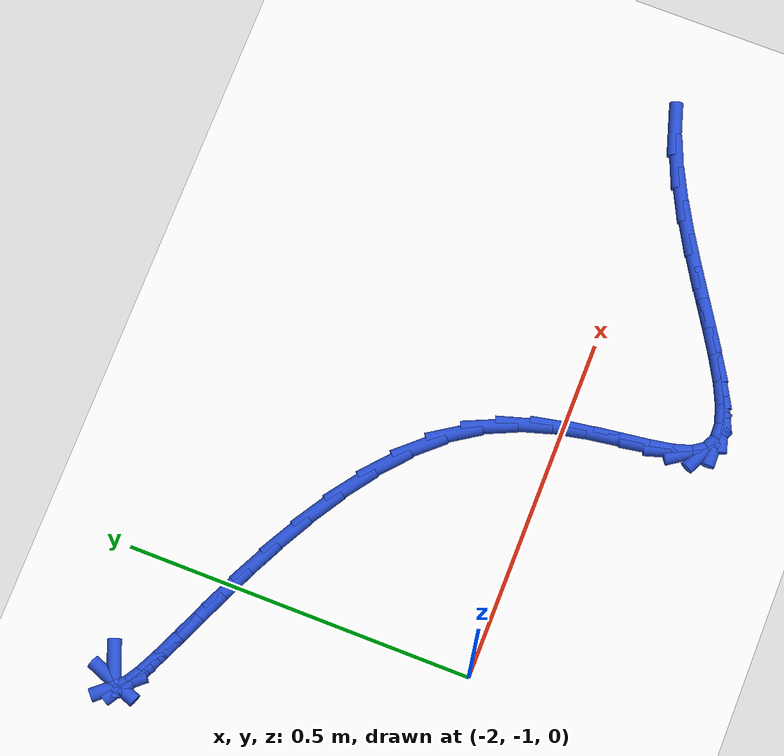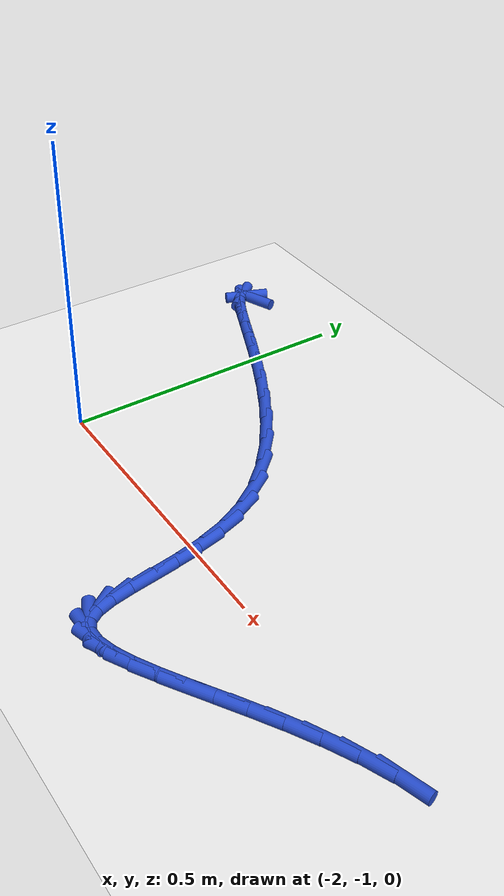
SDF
<sdf version="1.6">
 <world name="default">
  <model name="ground_plane">
   <static>1</static>
   <link name="link">
    <collision name="collision">
     <geometry><plane><normal>0 0 1</normal><size>100 100</size></plane></geometry>
     <surface><friction><ode><mu>100</mu><mu2>50</mu2></ode></friction></surface>
    </collision>
    <visual name="visual">
     <cast_shadows>0</cast_shadows>
     <geometry><plane><normal>0 0 1</normal><size>100 100</size></plane></geometry>
     <material>
      <script><uri>file://media/materials/scripts/gazebo.material</uri><name>Gazebo/WhiteGlow</name></script>
     </material>
    </visual>
   </link>
  </model>
  <model name="line">
   <link name="link_132">
    <pose>-2.1634134621999213 -0.5447384903108253 0.01 0 1.57 0.38050584407280125</pose>
    <collision name="collision">
     <geometry><cylinder><radius>0.01</radius><length>0.08</length></cylinder></geometry>
    </collision>
    <visual name="visual">
     <material>
      <script><name>Gazebo/Blue</name><uri>file://media/materials/scripts/gazebo.material</uri></script>
     </material>
     <geometry><cylinder><radius>0.01</radius><length>0.08</length></cylinder></geometry>
    </visual>
   </link>
   <link name="link_133">
    <pose>-2.1798199682319948 -0.5513010825790894 0.01 0 1.57 1.1964643574175775</pose>
    <collision name="collision">
     <geometry><cylinder><radius>0.01</radius><length>0.08</length></cylinder></geometry>
    </collision>
    <visual name="visual">
     <material>
      <script><name>Gazebo/Blue</name><uri>file://media/materials/scripts/gazebo.material</uri></script>
     </material>
     <geometry><cylinder><radius>0.01</radius><length>0.08</length></cylinder></geometry>
    </visual>
   </link>
   <link name="link_134">
    <pose>-2.1830306978159246 -0.5594738883352954 0.01 0 1.57 -0.8595833534273848</pose>
    <collision name="collision">
     <geometry><cylinder><radius>0.01</radius><length>0.08</length></cylinder></geometry>
    </collision>
    <visual name="visual">
     <material>
      <script><name>Gazebo/Blue</name><uri>file://media/materials/scripts/gazebo.material</uri></script>
     </material>
     <geometry><cylinder><radius>0.01</radius><length>0.08</length></cylinder></geometry>
    </visual>
   </link>
   <link name="link_135">
    <pose>-2.1745102973231454 -0.5693624737783749 0.01 0 1.57 -0.5574310650076343</pose>
    <collision name="collision">
     <geometry><cylinder><radius>0.01</radius><length>0.08</length></cylinder></geometry>
    </collision>
    <visual name="visual">
     <material>
      <script><name>Gazebo/Blue</name><uri>file://media/materials/scripts/gazebo.material</uri></script>
     </material>
     <geometry><cylinder><radius>0.01</radius><length>0.08</length></cylinder></geometry>
    </visual>
   </link>
   <link name="link_136">
    <pose>-2.155726566446126 -0.5810718118139238 0.01 0 1.57 -0.4591539863279753</pose>
    <collision name="collision">
     <geometry><cylinder><radius>0.01</radius><length>0.08</length></cylinder></geometry>
    </collision>
    <visual name="visual">
     <material>
      <script><name>Gazebo/Blue</name><uri>file://media/materials/scripts/gazebo.material</uri></script>
     </material>
     <geometry><cylinder><radius>0.01</radius><length>0.08</length></cylinder></geometry>
    </visual>
   </link>
   <link name="link_137">
    <pose>-2.128147304877335 -0.5947068753475384 0.01 0 1.57 -0.42184372228763406</pose>
    <collision name="collision">
     <geometry><cylinder><radius>0.01</radius><length>0.08</length></cylinder></geometry>
    </collision>
    <visual name="visual">
     <material>
      <script><name>Gazebo/Blue</name><uri>file://media/materials/scripts/gazebo.material</uri></script>
     </material>
     <geometry><cylinder><radius>0.01</radius><length>0.08</length></cylinder></geometry>
    </visual>
   </link>
   <link name="link_138">
    <pose>-2.093240312309241 -0.6103726372848155 0.01 0 1.57 -0.41170822952067776</pose>
    <collision name="collision">
     <geometry><cylinder><radius>0.01</radius><length>0.08</length></cylinder></geometry>
    </collision>
    <visual name="visual">
     <material>
      <script><name>Gazebo/Blue</name><uri>file://media/materials/scripts/gazebo.material</uri></script>
     </material>
     <geometry><cylinder><radius>0.01</radius><length>0.08</length></cylinder></geometry>
    </visual>
   </link>
   <link name="link_139">
    <pose>-2.0524733884343114 -0.6281740705313514 0.01 0 1.57 -0.41769509636596763</pose>
    <collision name="collision">
     <geometry><cylinder><radius>0.01</radius><length>0.08</length></cylinder></geometry>
    </collision>
    <visual name="visual">
     <material>
      <script><name>Gazebo/Blue</name><uri>file://media/materials/scripts/gazebo.material</uri></script>
     </material>
     <geometry><cylinder><radius>0.01</radius><length>0.08</length></cylinder></geometry>
    </visual>
   </link>
   <link name="link_140">
    <pose>-2.007314332945016 -0.6482161479927422 0.01 0 1.57 -0.43575207568086965</pose>
    <collision name="collision">
     <geometry><cylinder><radius>0.01</radius><length>0.08</length></cylinder></geometry>
    </collision>
    <visual name="visual">
     <material>
      <script><name>Gazebo/Blue</name><uri>file://media/materials/scripts/gazebo.material</uri></script>
     </material>
     <geometry><cylinder><radius>0.01</radius><length>0.08</length></cylinder></geometry>
    </visual>
   </link>
   <link name="link_141">
    <pose>-1.959230945533824 -0.6706038425745844 0.01 0 1.57 -0.4647503493867922</pose>
    <collision name="collision">
     <geometry><cylinder><radius>0.01</radius><length>0.08</length></cylinder></geometry>
    </collision>
    <visual name="visual">
     <material>
      <script><name>Gazebo/Blue</name><uri>file://media/materials/scripts/gazebo.material</uri></script>
     </material>
     <geometry><cylinder><radius>0.01</radius><length>0.08</length></cylinder></geometry>
    </visual>
   </link>
   <link name="link_142">
    <pose>-1.909691025893203 -0.6954421271824741 0.01 0 1.57 -0.5052131763946126</pose>
    <collision name="collision">
     <geometry><cylinder><radius>0.01</radius><length>0.08</length></cylinder></geometry>
    </collision>
    <visual name="visual">
     <material>
      <script><name>Gazebo/Blue</name><uri>file://media/materials/scripts/gazebo.material</uri></script>
     </material>
     <geometry><cylinder><radius>0.01</radius><length>0.08</length></cylinder></geometry>
    </visual>
   </link>
   <link name="link_143">
    <pose>-1.86016237371562 -0.7228359747220089 0.01 0 1.57 -0.5589493300951623</pose>
    <collision name="collision">
     <geometry><cylinder><radius>0.01</radius><length>0.08</length></cylinder></geometry>
    </collision>
    <visual name="visual">
     <material>
      <script><name>Gazebo/Blue</name><uri>file://media/materials/scripts/gazebo.material</uri></script>
     </material>
     <geometry><cylinder><radius>0.01</radius><length>0.08</length></cylinder></geometry>
    </visual>
   </link>
   <link name="link_144">
    <pose>-1.812112788693547 -0.7528903580987834 0.01 0 1.57 -0.6290560343608278</pose>
    <collision name="collision">
     <geometry><cylinder><radius>0.01</radius><length>0.08</length></cylinder></geometry>
    </collision>
    <visual name="visual">
     <material>
      <script><name>Gazebo/Blue</name><uri>file://media/materials/scripts/gazebo.material</uri></script>
     </material>
     <geometry><cylinder><radius>0.01</radius><length>0.08</length></cylinder></geometry>
    </visual>
   </link>
   <link name="link_145">
    <pose>-1.7670100705194505 -0.7857102502183948 0.01 0 1.57 -0.7200581986029679</pose>
    <collision name="collision">
     <geometry><cylinder><radius>0.01</radius><length>0.08</length></cylinder></geometry>
    </collision>
    <visual name="visual">
     <material>
      <script><name>Gazebo/Blue</name><uri>file://media/materials/scripts/gazebo.material</uri></script>
     </material>
     <geometry><cylinder><radius>0.01</radius><length>0.08</length></cylinder></geometry>
    </visual>
   </link>
   <link name="link_146">
    <pose>-1.7263220188858 -0.8214006239864395 0.01 0 1.57 -0.8378906430196946</pose>
    <collision name="collision">
     <geometry><cylinder><radius>0.01</radius><length>0.08</length></cylinder></geometry>
    </collision>
    <visual name="visual">
     <material>
      <script><name>Gazebo/Blue</name><uri>file://media/materials/scripts/gazebo.material</uri></script>
     </material>
     <geometry><cylinder><radius>0.01</radius><length>0.08</length></cylinder></geometry>
    </visual>
   </link>
   <link name="link_147">
    <pose>-1.691516433485063 -0.8600664523085136 0.01 0 1.57 -0.9887262036252049</pose>
    <collision name="collision">
     <geometry><cylinder><radius>0.01</radius><length>0.08</length></cylinder></geometry>
    </collision>
    <visual name="visual">
     <material>
      <script><name>Gazebo/Blue</name><uri>file://media/materials/scripts/gazebo.material</uri></script>
     </material>
     <geometry><cylinder><radius>0.01</radius><length>0.08</length></cylinder></geometry>
    </visual>
   </link>
   <link name="link_148">
    <pose>-1.664046994582187 -0.9018049984986757 0.01 0 1.57 -1.1509734642535074</pose>
    <collision name="collision">
     <geometry><cylinder><radius>0.01</radius><length>0.08</length></cylinder></geometry>
    </collision>
    <visual name="visual">
     <material>
      <script><name>Gazebo/Blue</name><uri>file://media/materials/scripts/gazebo.material</uri></script>
     </material>
     <geometry><cylinder><radius>0.01</radius><length>0.08</length></cylinder></geometry>
    </visual>
   </link>
   <link name="link_149">
    <pose>-1.644269259562504 -0.9461139209047309 0.01 0 1.57 -1.2795933883850157</pose>
    <collision name="collision">
     <geometry><cylinder><radius>0.01</radius><length>0.08</length></cylinder></geometry>
    </collision>
    <visual name="visual">
     <material>
      <script><name>Gazebo/Blue</name><uri>file://media/materials/scripts/gazebo.material</uri></script>
     </material>
     <geometry><cylinder><radius>0.01</radius><length>0.08</length></cylinder></geometry>
    </visual>
   </link>
   <link name="link_150">
    <pose>-1.6306741628950008 -0.9914727430358728 0.01 0 1.57 -1.3702969989653635</pose>
    <collision name="collision">
     <geometry><cylinder><radius>0.01</radius><length>0.08</length></cylinder></geometry>
    </collision>
    <visual name="visual">
     <material>
      <script><name>Gazebo/Blue</name><uri>file://media/materials/scripts/gazebo.material</uri></script>
     </material>
     <geometry><cylinder><radius>0.01</radius><length>0.08</length></cylinder></geometry>
    </visual>
   </link>
   <link name="link_151">
    <pose>-1.6215716157380773 -1.0362621447490479 0.01 0 1.57 -1.4239734629653895</pose>
    <collision name="collision">
     <geometry><cylinder><radius>0.01</radius><length>0.08</length></cylinder></geometry>
    </collision>
    <visual name="visual">
     <material>
      <script><name>Gazebo/Blue</name><uri>file://media/materials/scripts/gazebo.material</uri></script>
     </material>
     <geometry><cylinder><radius>0.01</radius><length>0.08</length></cylinder></geometry>
    </visual>
   </link>
   <link name="link_152">
    <pose>-1.6152715292501305 -1.0788628059012024 0.01 0 1.57 -1.4378555781503788</pose>
    <collision name="collision">
     <geometry><cylinder><radius>0.01</radius><length>0.08</length></cylinder></geometry>
    </collision>
    <visual name="visual">
     <material>
      <script><name>Gazebo/Blue</name><uri>file://media/materials/scripts/gazebo.material</uri></script>
     </material>
     <geometry><cylinder><radius>0.01</radius><length>0.08</length></cylinder></geometry>
    </visual>
   </link>
   <link name="link_153">
    <pose>-1.6100838145895604 -1.117655406349281 0.01 0 1.57 -1.3996883597584224</pose>
    <collision name="collision">
     <geometry><cylinder><radius>0.01</radius><length>0.08</length></cylinder></geometry>
    </collision>
    <visual name="visual">
     <material>
      <script><name>Gazebo/Blue</name><uri>file://media/materials/scripts/gazebo.material</uri></script>
     </material>
     <geometry><cylinder><radius>0.01</radius><length>0.08</length></cylinder></geometry>
    </visual>
   </link>
   <link name="link_154">
    <pose>-1.6043183829147643 -1.1510206259502302 0.01 0 1.57 -1.2745470460455386</pose>
    <collision name="collision">
     <geometry><cylinder><radius>0.01</radius><length>0.08</length></cylinder></geometry>
    </collision>
    <visual name="visual">
     <material>
      <script><name>Gazebo/Blue</name><uri>file://media/materials/scripts/gazebo.material</uri></script>
     </material>
     <geometry><cylinder><radius>0.01</radius><length>0.08</length></cylinder></geometry>
    </visual>
   </link>
   <link name="link_155">
    <pose>-1.596285145384141 -1.1773391445609962 0.01 0 1.57 -0.9742039762456328</pose>
    <collision name="collision">
     <geometry><cylinder><radius>0.01</radius><length>0.08</length></cylinder></geometry>
    </collision>
    <visual name="visual">
     <material>
      <script><name>Gazebo/Blue</name><uri>file://media/materials/scripts/gazebo.material</uri></script>
     </material>
     <geometry><cylinder><radius>0.01</radius><length>0.08</length></cylinder></geometry>
    </visual>
   </link>
   <link name="link_156">
    <pose>-1.584295335625267 -1.1949933933433514 0.01 0 1.57 -0.442539231124182</pose>
    <collision name="collision">
     <geometry><cylinder><radius>0.01</radius><length>0.08</length></cylinder></geometry>
    </collision>
    <visual name="visual">
     <material>
      <script><name>Gazebo/Blue</name><uri>file://media/materials/scripts/gazebo.material</uri></script>
     </material>
     <geometry><cylinder><radius>0.01</radius><length>0.08</length></cylinder></geometry>
    </visual>
   </link>
   <link name="link_157">
    <pose>-1.5672077731311218 -1.203090954399848 0.01 0 1.57 0.023271894321225756</pose>
    <collision name="collision">
     <geometry><cylinder><radius>0.01</radius><length>0.08</length></cylinder></geometry>
    </collision>
    <visual name="visual">
     <material>
      <script><name>Gazebo/Blue</name><uri>file://media/materials/scripts/gazebo.material</uri></script>
     </material>
     <geometry><cylinder><radius>0.01</radius><length>0.08</length></cylinder></geometry>
    </visual>
   </link>
   <link name="link_158">
    <pose>-1.5452714424857776 -1.2025803622522662 0.01 0 1.57 0.29099606359521296</pose>
    <collision name="collision">
     <geometry><cylinder><radius>0.01</radius><length>0.08</length></cylinder></geometry>
    </collision>
    <visual name="visual">
     <material>
      <script><name>Gazebo/Blue</name><uri>file://media/materials/scripts/gazebo.material</uri></script>
     </material>
     <geometry><cylinder><radius>0.01</radius><length>0.08</length></cylinder></geometry>
    </visual>
   </link>
   <link name="link_159">
    <pose>-1.5189526461558363 -1.194697938739265 0.01 0 1.57 0.4341333347877674</pose>
    <collision name="collision">
     <geometry><cylinder><radius>0.01</radius><length>0.08</length></cylinder></geometry>
    </collision>
    <visual name="visual">
     <material>
      <script><name>Gazebo/Blue</name><uri>file://media/materials/scripts/gazebo.material</uri></script>
     </material>
     <geometry><cylinder><radius>0.01</radius><length>0.08</length></cylinder></geometry>
    </visual>
   </link>
   <link name="link_160">
    <pose>-1.4887176866078984 -1.1806800056995024 0.01 0 1.57 0.511699326028286</pose>
    <collision name="collision">
     <geometry><cylinder><radius>0.01</radius><length>0.08</length></cylinder></geometry>
    </collision>
    <visual name="visual">
     <material>
      <script><name>Gazebo/Blue</name><uri>file://media/materials/scripts/gazebo.material</uri></script>
     </material>
     <geometry><cylinder><radius>0.01</radius><length>0.08</length></cylinder></geometry>
    </visual>
   </link>
   <link name="link_161">
    <pose>-1.4550328663085674 -1.1617628849716382 0.01 0 1.57 0.5519482860051629</pose>
    <collision name="collision">
     <geometry><cylinder><radius>0.01</radius><length>0.08</length></cylinder></geometry>
    </collision>
    <visual name="visual">
     <material>
      <script><name>Gazebo/Blue</name><uri>file://media/materials/scripts/gazebo.material</uri></script>
     </material>
     <geometry><cylinder><radius>0.01</radius><length>0.08</length></cylinder></geometry>
    </visual>
   </link>
   <link name="link_162">
    <pose>-1.4183644877244448 -1.1391828983943306 0.01 0 1.57 0.5680036127045718</pose>
    <collision name="collision">
     <geometry><cylinder><radius>0.01</radius><length>0.08</length></cylinder></geometry>
    </collision>
    <visual name="visual">
     <material>
      <script><name>Gazebo/Blue</name><uri>file://media/materials/scripts/gazebo.material</uri></script>
     </material>
     <geometry><cylinder><radius>0.01</radius><length>0.08</length></cylinder></geometry>
    </visual>
   </link>
   <link name="link_163">
    <pose>-1.3791788533221325 -1.1141763678062389 0.01 0 1.57 0.5659570833558966</pose>
    <collision name="collision">
     <geometry><cylinder><radius>0.01</radius><length>0.08</length></cylinder></geometry>
    </collision>
    <visual name="visual">
     <material>
      <script><name>Gazebo/Blue</name><uri>file://media/materials/scripts/gazebo.material</uri></script>
     </material>
     <geometry><cylinder><radius>0.01</radius><length>0.08</length></cylinder></geometry>
    </visual>
   </link>
   <link name="link_164">
    <pose>-1.3379422655682323 -1.0879796150460217 0.01 0 1.57 0.5482453044480116</pose>
    <collision name="collision">
     <geometry><cylinder><radius>0.01</radius><length>0.08</length></cylinder></geometry>
    </collision>
    <visual name="visual">
     <material>
      <script><name>Gazebo/Blue</name><uri>file://media/materials/scripts/gazebo.material</uri></script>
     </material>
     <geometry><cylinder><radius>0.01</radius><length>0.08</length></cylinder></geometry>
    </visual>
   </link>
   <link name="link_165">
    <pose>-1.2951210269293452 -1.061828961952337 0.01 0 1.57 0.5150170946898767</pose>
    <collision name="collision">
     <geometry><cylinder><radius>0.01</radius><length>0.08</length></cylinder></geometry>
    </collision>
    <visual name="visual">
     <material>
      <script><name>Gazebo/Blue</name><uri>file://media/materials/scripts/gazebo.material</uri></script>
     </material>
     <geometry><cylinder><radius>0.01</radius><length>0.08</length></cylinder></geometry>
    </visual>
   </link>
   <link name="link_166">
    <pose>-1.2511814398720746 -1.0369607303638448 0.01 0 1.57 0.46461004777312115</pose>
    <collision name="collision">
     <geometry><cylinder><radius>0.01</radius><length>0.08</length></cylinder></geometry>
    </collision>
    <visual name="visual">
     <material>
      <script><name>Gazebo/Blue</name><uri>file://media/materials/scripts/gazebo.material</uri></script>
     </material>
     <geometry><cylinder><radius>0.01</radius><length>0.08</length></cylinder></geometry>
    </visual>
   </link>
   <link name="link_167">
    <pose>-1.206589806863022 -1.014611242119204 0.01 0 1.57 0.39359517394555277</pose>
    <collision name="collision">
     <geometry><cylinder><radius>0.01</radius><length>0.08</length></cylinder></geometry>
    </collision>
    <visual name="visual">
     <material>
      <script><name>Gazebo/Blue</name><uri>file://media/materials/scripts/gazebo.material</uri></script>
     </material>
     <geometry><cylinder><radius>0.01</radius><length>0.08</length></cylinder></geometry>
    </visual>
   </link>
   <link name="link_168">
    <pose>-1.1618124303687891 -0.9960168190570724 0.01 0 1.57 0.29659525521671937</pose>
    <collision name="collision">
     <geometry><cylinder><radius>0.01</radius><length>0.08</length></cylinder></geometry>
    </collision>
    <visual name="visual">
     <material>
      <script><name>Gazebo/Blue</name><uri>file://media/materials/scripts/gazebo.material</uri></script>
     </material>
     <geometry><cylinder><radius>0.01</radius><length>0.08</length></cylinder></geometry>
    </visual>
   </link>
  </model>
 </world>
</sdf>
